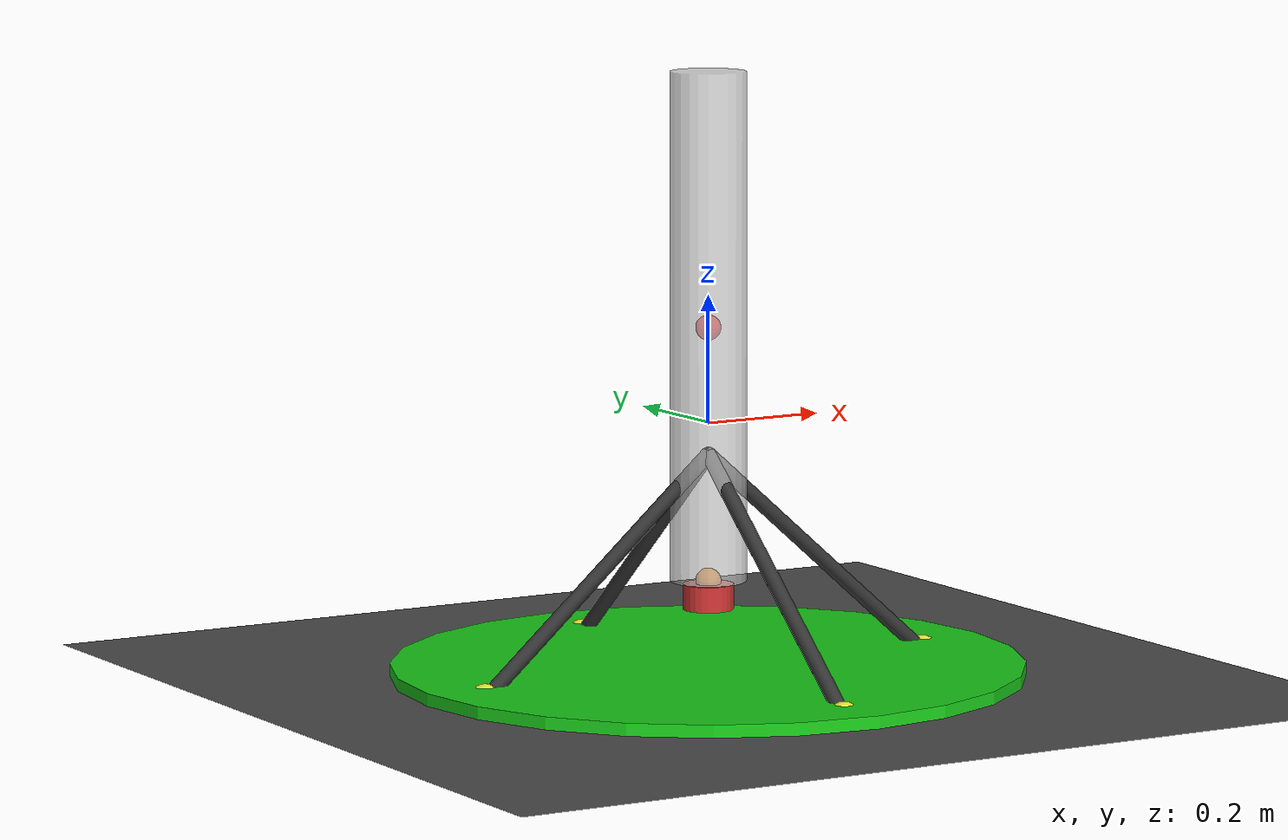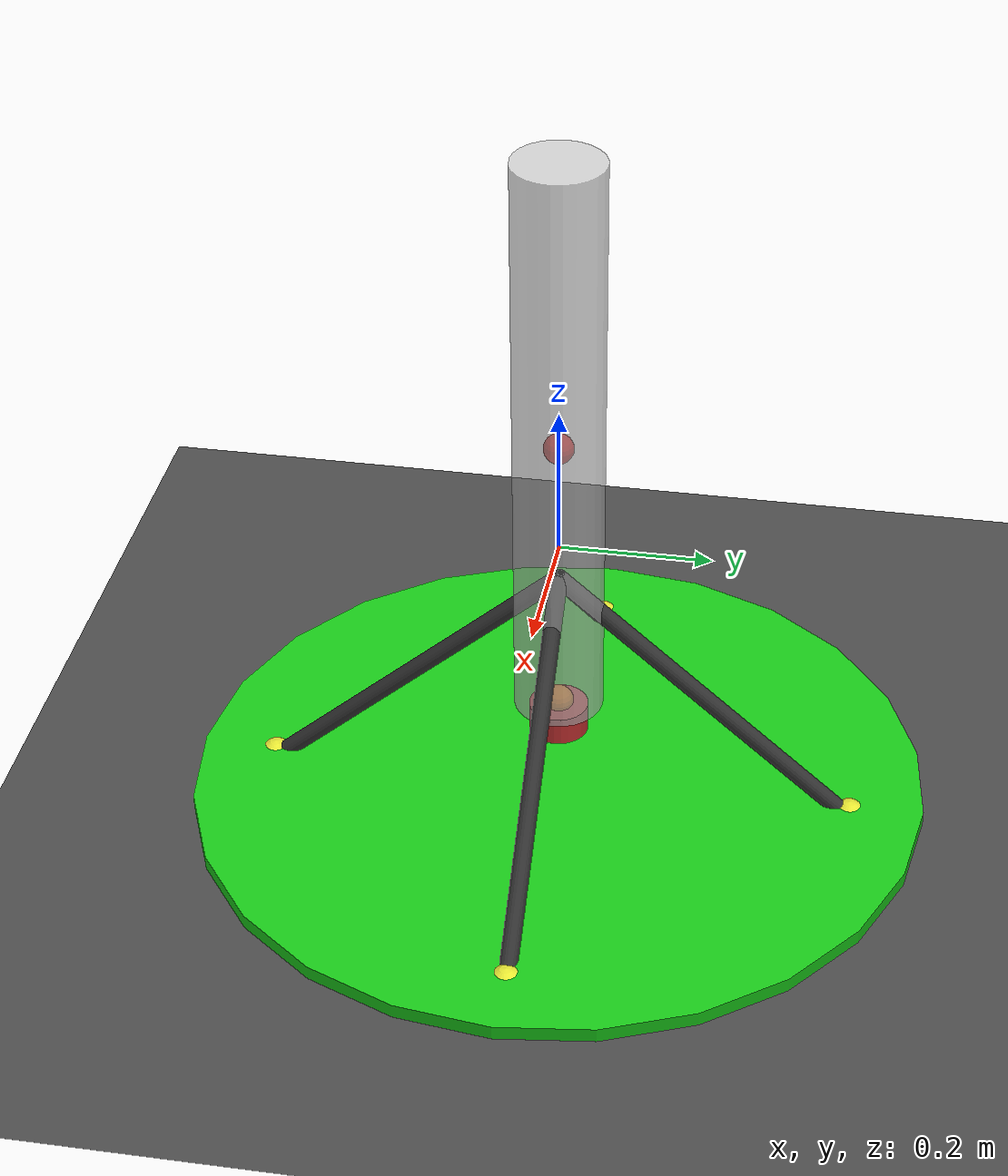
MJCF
<mujoco model="hopper_gimbal">
    <compiler angle="degree" coordinate="local"/>

    <option gravity="0 0 -9.81"
            timestep="0.002"
            integrator="implicitfast"
            iterations="80"/>

    <visual>
        <headlight ambient="0.5 0.5 0.5"/>
    </visual>

    <!-- Materials are the same as hopper_default.xml. -->
    <asset>
        <texture type="skybox"
                 builtin="gradient"
                 rgb1="0.2 0.3 0.4"
                 rgb2="0 0 0"
                 width="512"
                 height="512"/>

        <material name="body_mat" rgba="0.7 0.7 0.7 1"/>
        <material name="leg_mat" rgba="0.2 0.2 0.2 1"/>
        <material name="pad_mat" rgba="0.1 0.8 0.1 1"/>
        <material name="foot_mat" rgba="0.9 0.9 0.2 1"/>
    </asset>

    <worldbody>
        <!-- The original hopper COM was at world Z=0.355. In the gimbal model
             the COM is the world origin, so ground/pad move down by 0.355 m. -->
        <!-- Ground is at -0.40 m relative to the gimbal pivot (which is 40 cm above the ground) -->
        <geom name="ground"
              type="plane"
              pos="0 0 -0.40"
              size="20 20 0.1"
              rgba="0.3 0.3 0.3 1"
              friction="1.2 0.1 0.1"
              contype="0"
              conaffinity="0"/>

        <body name="landing_pad" pos="0 0 -0.40">
            <geom name="pad_geom"
                  type="cylinder"
                  pos="0 0 0.01"
                  size="0.5 0.01"
                  material="pad_mat"
                  contype="0"
                  conaffinity="0"/>
        </body>

        <!-- Gimbal pivot frame at (0, 0, 0) -->
        <body name="gimbal_roll_frame" pos="0 0 0">
            <inertial pos="0 0 0"
                      mass="0.00001"
                      diaginertia="0.0000001 0.0000001 0.0000001"/>
            <joint name="gimbal_roll"
                       type="hinge"
                       axis="1 0 0"
                       range="-60 60"
                       damping="0.025"
                       armature="0.001"/>

            <body name="rocket" pos="0 0 0">
                <joint name="gimbal_pitch"
                           type="hinge"
                           axis="0 1 0"
                           range="-60 60"
                           damping="0.025"
                           armature="0.001"/>

                <inertial pos="0 0 0.15"
                          mass="1.8"
                          diaginertia="0.098 0.098 0.003"/>

                <site name="COM"
                      pos="0 0 0.15"
                      size="0.02"
                      rgba="1 0 0 1"/>

                <!-- Rocket body is 80 cm long, going from z = -0.250 to z = 0.550 -->
                <geom name="main_body"
                      type="cylinder"
                      fromto="0 0 -0.250 0 0 0.550"
                      size="0.06"
                      rgba="0.8 0.8 0.8 0.7"
                      material="body_mat"/>

                <!-- Landing legs reaching down to ground level (z = -0.40 m) -->
                <geom name="leg1"
                      type="capsule"
                      fromto="0 0 -0.05 0.4 0 -0.40"
                      size="0.012"
                      material="leg_mat"
                      contype="0"
                      conaffinity="0"/>
                <geom name="foot1_geom"
                      type="sphere"
                      pos="0.4 0 -0.40"
                      size="0.025"
                      material="foot_mat"
                      contype="0"
                      conaffinity="0"/>
                <site name="foot1"
                      pos="0.4 0 -0.40"
                      size="0.015"
                      rgba="1 0 0 1"/>

                <geom name="leg2"
                      type="capsule"
                      fromto="0 0 -0.05 -0.4 0 -0.40"
                      size="0.012"
                      material="leg_mat"
                      contype="0"
                      conaffinity="0"/>
                <geom name="foot2_geom"
                      type="sphere"
                      pos="-0.4 0 -0.40"
                      size="0.025"
                      material="foot_mat"
                      contype="0"
                      conaffinity="0"/>
                <site name="foot2"
                      pos="-0.4 0 -0.40"
                      size="0.015"
                      rgba="0 1 0 1"/>

                <geom name="leg3"
                      type="capsule"
                      fromto="0 0 -0.05 0 0.4 -0.40"
                      size="0.012"
                      material="leg_mat"
                      contype="0"
                      conaffinity="0"/>
                <geom name="foot3_geom"
                      type="sphere"
                      pos="0 0.4 -0.40"
                      size="0.025"
                      material="foot_mat"
                      contype="0"
                      conaffinity="0"/>
                <site name="foot3"
                      pos="0 0.4 -0.40"
                      size="0.015"
                      rgba="0 0 1 1"/>

                <geom name="leg4"
                      type="capsule"
                      fromto="0 0 -0.05 0 -0.4 -0.40"
                      size="0.012"
                      material="leg_mat"
                      contype="0"
                      conaffinity="0"/>
                <geom name="foot4_geom"
                      type="sphere"
                      pos="0 -0.4 -0.40"
                      size="0.025"
                      material="foot_mat"
                      contype="0"
                      conaffinity="0"/>
                <site name="foot4"
                      pos="0 -0.4 -0.40"
                      size="0.015"
                      rgba="1 1 0 1"/>

                <!-- Engine pivot is at the bottom of the body (z = -0.250) -->
                <body name="tvc_x_frame" pos="0 0 -0.250">
                    <inertial pos="0 0 0"
                              mass="0.01"
                              diaginertia="0.001 0.001 0.001"/>
                    <joint name="tvc_x"
                           type="hinge"
                           axis="1 0 0"
                           range="-20 20"
                           damping="1.0"/>

                    <body name="tvc_y_frame">
                        <inertial pos="0 0 0"
                                  mass="0.02"
                                  diaginertia="0.0002 0.0002 0.0002"/>
                        <joint name="tvc_y"
                               type="hinge"
                               axis="0 1 0"
                               range="-20 20"
                               damping="1.0"/>

                        <geom name="engine"
                               type="cylinder"
                               pos="0 0 -0.025"
                               size="0.04 0.02"
                               rgba="0.8 0.2 0.2 1"
                               contype="0"
                               conaffinity="0"/>

                        <!-- Thrust site is at z = 0 relative to tvc_y_frame (which is z = -0.250 on rocket) -->
                        <site name="thrust_site"
                              pos="0 0 0.0"
                              size="0.02"
                              rgba="1 0.5 0 1"/>
                    </body>
                </body>
            </body>
        </body>
    </worldbody>
</mujoco>
